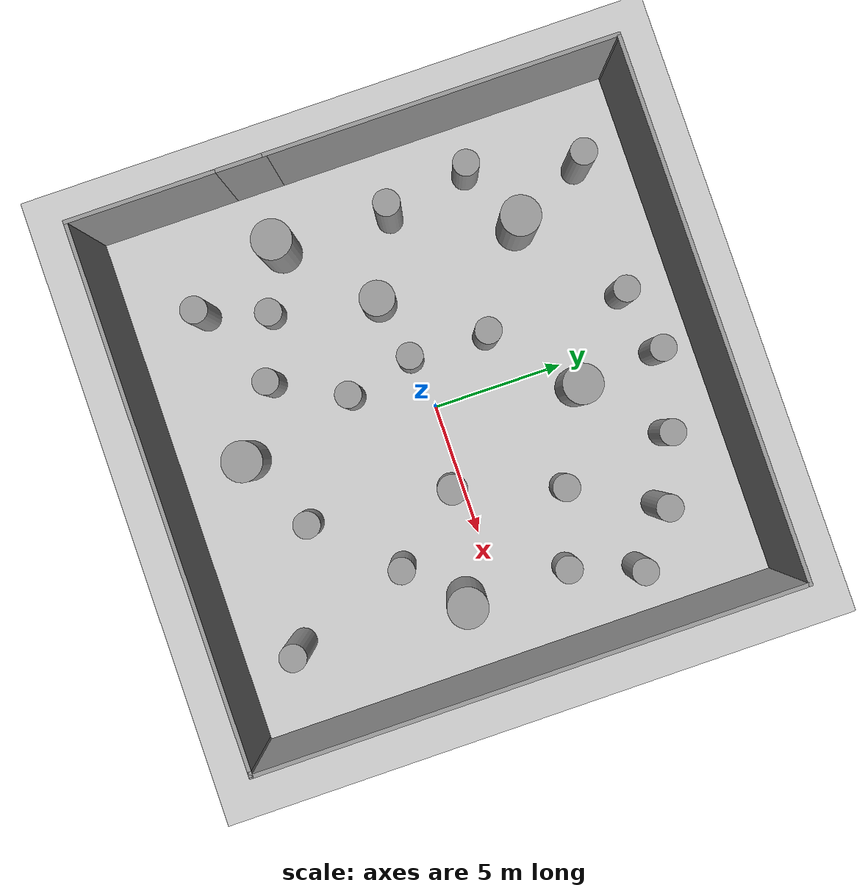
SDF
<sdf version="1.7">
 <world name="default">
  <model name="ground_plane">
   <static>1</static>
   <link name="link">
    <collision name="collision">
     <geometry><plane><normal>0 0 1</normal><size>100 100</size></plane></geometry>
     <surface><friction><ode><mu>100</mu><mu2>50</mu2></ode></friction></surface>
    </collision>
    <visual name="visual">
     <cast_shadows>0</cast_shadows>
     <geometry><plane><normal>0 0 1</normal><size>100 100</size></plane></geometry>
     <material>
      <script><uri>file://media/materials/scripts/gazebo.material</uri><name>Gazebo/Grey</name></script>
     </material>
    </visual>
   </link>
  </model>
  <model name="unit_cylinder">
   <pose>-1.37987 -2.84588 1.39684 0 -0 0.000808</pose>
   <link name="link">
    <inertial>
     <mass>1</mass>
     <inertia><ixx>0.145833</ixx><ixy>0</ixy><ixz>0</ixz><iyy>0.145833</iyy><iyz>0</iyz><izz>0.125</izz></inertia>
    </inertial>
    <collision name="collision">
     <geometry><cylinder><radius>0.5</radius><length>2.7937</length></cylinder></geometry>
    </collision>
    <visual name="visual">
     <geometry><cylinder><radius>0.5</radius><length>2.7937</length></cylinder></geometry>
     <material>
      <script><name>Gazebo/Grey</name><uri>file://media/materials/scripts/gazebo.material</uri></script>
     </material>
    </visual>
   </link>
  </model>
  <model name="Untitled">
   <pose>-0.0303 0.04304 0 0 -0 0</pose>
   <link name="Wall_15">
    <collision name="Wall_15_Collision">
     <geometry><box><size>2 0.15 5</size></box></geometry>
     <pose>0 0 2.5 0 -0 0</pose>
    </collision>
    <visual name="Wall_15_Visual">
     <pose>0 0 2.5 0 -0 0</pose>
     <geometry><box><size>2 0.15 5</size></box></geometry>
     <material>
      <script><uri>file://media/materials/scripts/gazebo.material</uri><name>Gazebo/Grey</name></script>
      <ambient>1 1 1 1</ambient>
     </material>
     <meta><layer>0</layer></meta>
    </visual>
    <pose>-9.975 -3.775 0 0 -0 -1.5708</pose>
   </link>
   <link name="Wall_17">
    <collision name="Wall_17_Collision">
     <geometry><box><size>5.5 0.15 5</size></box></geometry>
     <pose>0 0 2.5 0 -0 0</pose>
    </collision>
    <visual name="Wall_17_Visual">
     <pose>0 0 2.5 0 -0 0</pose>
     <geometry><box><size>5.5 0.15 5</size></box></geometry>
     <material>
      <script><uri>file://media/materials/scripts/gazebo.material</uri><name>Gazebo/Grey</name></script>
      <ambient>1 1 1 1</ambient>
     </material>
     <meta><layer>0</layer></meta>
    </visual>
    <pose>-9.975 -7.375 0 0 -0 -1.5708</pose>
   </link>
   <link name="Wall_18">
    <collision name="Wall_18_Collision">
     <geometry><box><size>20 0.15 5</size></box></geometry>
     <pose>0 0 2.5 0 -0 0</pose>
    </collision>
    <visual name="Wall_18_Visual">
     <pose>0 0 2.5 0 -0 0</pose>
     <geometry><box><size>20 0.15 5</size></box></geometry>
     <material>
      <script><uri>file://media/materials/scripts/gazebo.material</uri><name>Gazebo/Grey</name></script>
      <ambient>1 1 1 1</ambient>
     </material>
     <meta><layer>0</layer></meta>
    </visual>
    <pose>-0.05 -10.05 0 0 -0 0</pose>
   </link>
   <link name="Wall_28">
    <collision name="Wall_28_Collision">
     <geometry><box><size>0.25 0.15 5</size></box></geometry>
     <pose>0 0 2.5 0 -0 0</pose>
    </collision>
    <visual name="Wall_28_Visual">
     <pose>0 0 2.5 0 -0 0</pose>
     <geometry><box><size>0.25 0.15 5</size></box></geometry>
     <material>
      <script><uri>file://media/materials/scripts/gazebo.material</uri><name>Gazebo/Grey</name></script>
      <ambient>1 1 1 1</ambient>
     </material>
     <meta><layer>0</layer></meta>
    </visual>
    <pose>9.925 -10.05 0 0 -0 0</pose>
   </link>
   <link name="Wall_29">
    <collision name="Wall_29_Collision">
     <geometry><box><size>20.25 0.15 5</size></box></geometry>
     <pose>0 0 2.5 0 -0 0</pose>
    </collision>
    <visual name="Wall_29_Visual">
     <pose>0 0 2.5 0 -0 0</pose>
     <geometry><box><size>20.25 0.15 5</size></box></geometry>
     <material>
      <script><uri>file://media/materials/scripts/gazebo.material</uri><name>Gazebo/Grey</name></script>
      <ambient>1 1 1 1</ambient>
     </material>
     <meta><layer>0</layer></meta>
    </visual>
    <pose>9.975 -0 0 0 -0 1.5708</pose>
   </link>
   <link name="Wall_33">
    <collision name="Wall_33_Collision">
     <geometry><box><size>20 0.15 5</size></box></geometry>
     <pose>0 0 2.5 0 -0 0</pose>
    </collision>
    <visual name="Wall_33_Visual">
     <pose>0 0 2.5 0 -0 0</pose>
     <geometry><box><size>20 0.15 5</size></box></geometry>
     <material>
      <script><uri>file://media/materials/scripts/gazebo.material</uri><name>Gazebo/Grey</name></script>
      <ambient>1 1 1 1</ambient>
     </material>
     <meta><layer>0</layer></meta>
    </visual>
    <pose>0.05 10.05 0 0 -0 3.14159</pose>
   </link>
   <link name="Wall_34">
    <collision name="Wall_34_Collision">
     <geometry><box><size>0.25 0.15 5</size></box></geometry>
     <pose>0 0 2.5 0 -0 0</pose>
    </collision>
    <visual name="Wall_34_Visual">
     <pose>0 0 2.5 0 -0 0</pose>
     <geometry><box><size>0.25 0.15 5</size></box></geometry>
     <material>
      <script><uri>file://media/materials/scripts/gazebo.material</uri><name>Gazebo/Grey</name></script>
      <ambient>1 1 1 1</ambient>
     </material>
     <meta><layer>0</layer></meta>
    </visual>
    <pose>-9.925 10.05 0 0 -0 3.14159</pose>
   </link>
   <link name="Wall_35">
    <collision name="Wall_35_Collision">
     <geometry><box><size>13.05 0.15 5</size></box></geometry>
     <pose>0 0 2.5 0 -0 0</pose>
    </collision>
    <visual name="Wall_35_Visual">
     <pose>0 0 2.5 0 -0 0</pose>
     <geometry><box><size>13.05 0.15 5</size></box></geometry>
     <material>
      <script><uri>file://media/materials/scripts/gazebo.material</uri><name>Gazebo/Grey</name></script>
      <ambient>1 1 1 1</ambient>
     </material>
     <meta><layer>0</layer></meta>
    </visual>
    <pose>-9.975 3.6 0 0 -0 -1.5708</pose>
   </link>
   <static>1</static>
  </model>
  <model name="unit_cylinder_clone_1">
   <pose>-1.92183 2.66658 1.49385 0 -0 0.000352</pose>
   <link name="link">
    <inertial>
     <mass>1</mass>
     <inertia><ixx>0.145833</ixx><ixy>0</ixy><ixz>0</ixz><iyy>0.145833</iyy><iyz>0</iyz><izz>0.125</izz></inertia>
    </inertial>
    <collision name="collision">
     <geometry><cylinder><radius>0.5</radius><length>3.02882</length></cylinder></geometry>
    </collision>
    <visual name="visual">
     <geometry><cylinder><radius>0.5</radius><length>3.02882</length></cylinder></geometry>
     <material>
      <script><name>Gazebo/Grey</name><uri>file://media/materials/scripts/gazebo.material</uri></script>
     </material>
    </visual>
   </link>
   <static>1</static>
  </model>
  <model name="unit_cylinder_clone_2">
   <pose>5.24507 -3.07982 1.21524 0 -0 0.000352</pose>
   <static>1</static>
   <link name="link">
    <inertial>
     <mass>1</mass>
     <inertia><ixx>0.145833</ixx><ixy>0</ixy><ixz>0</ixz><iyy>0.145833</iyy><iyz>0</iyz><izz>0.125</izz></inertia>
    </inertial>
    <collision name="collision">
     <geometry><cylinder><radius>0.5</radius><length>2.62089</length></cylinder></geometry>
    </collision>
    <visual name="visual">
     <geometry><cylinder><radius>0.5</radius><length>2.62089</length></cylinder></geometry>
     <material>
      <script><name>Gazebo/Grey</name><uri>file://media/materials/scripts/gazebo.material</uri></script>
     </material>
    </visual>
   </link>
  </model>
  <model name="unit_cylinder_clone_4">
   <pose>3.02569 -0.399537 2.35564 0 -0 0.000352</pose>
   <static>1</static>
   <link name="link">
    <inertial>
     <mass>1</mass>
     <inertia><ixx>0.145833</ixx><ixy>0</ixy><ixz>0</ixz><iyy>0.145833</iyy><iyz>0</iyz><izz>0.125</izz></inertia>
    </inertial>
    <collision name="collision">
     <geometry><cylinder><radius>0.549465</radius><length>2.46158</length></cylinder></geometry>
    </collision>
    <visual name="visual">
     <geometry><cylinder><radius>0.549465</radius><length>2.46158</length></cylinder></geometry>
     <material>
      <script><name>Gazebo/Grey</name><uri>file://media/materials/scripts/gazebo.material</uri></script>
     </material>
    </visual>
   </link>
  </model>
  <model name="unit_cylinder_clone_5">
   <pose>6.7762 -7.57083 1.59329 0 -0 0.000352</pose>
   <static>1</static>
   <link name="link">
    <inertial>
     <mass>1</mass>
     <inertia><ixx>0.145833</ixx><ixy>0</ixy><ixz>0</ixz><iyy>0.145833</iyy><iyz>0</iyz><izz>0.125</izz></inertia>
    </inertial>
    <collision name="collision">
     <geometry><cylinder><radius>0.5</radius><length>4.45278</length></cylinder></geometry>
    </collision>
    <visual name="visual">
     <geometry><cylinder><radius>0.5</radius><length>4.45278</length></cylinder></geometry>
     <material>
      <script><name>Gazebo/Grey</name><uri>file://media/materials/scripts/gazebo.material</uri></script>
     </material>
    </visual>
   </link>
  </model>
  <model name="unit_cylinder_clone_6">
   <pose>6.13905 6.68782 1.62333 0 -0 0.000352</pose>
   <static>1</static>
   <link name="link">
    <inertial>
     <mass>1</mass>
     <inertia><ixx>0.145833</ixx><ixy>0</ixy><ixz>0</ixz><iyy>0.145833</iyy><iyz>0</iyz><izz>0.125</izz></inertia>
    </inertial>
    <collision name="collision">
     <geometry><cylinder><radius>0.5</radius><length>3.4263</length></cylinder></geometry>
    </collision>
    <visual name="visual">
     <geometry><cylinder><radius>0.5</radius><length>3.4263</length></cylinder></geometry>
     <material>
      <script><name>Gazebo/Grey</name><uri>file://media/materials/scripts/gazebo.material</uri></script>
     </material>
    </visual>
   </link>
  </model>
  <model name="unit_cylinder_clone_7">
   <pose>-1.77862 7.95805 1.21363 0 -0 0.000352</pose>
   <static>1</static>
   <link name="link">
    <inertial>
     <mass>1</mass>
     <inertia><ixx>0.145833</ixx><ixy>0</ixy><ixz>0</ixz><iyy>0.145833</iyy><iyz>0</iyz><izz>0.125</izz></inertia>
    </inertial>
    <collision name="collision">
     <geometry><cylinder><radius>0.5</radius><length>2.45036</length></cylinder></geometry>
    </collision>
    <visual name="visual">
     <geometry><cylinder><radius>0.5</radius><length>2.45036</length></cylinder></geometry>
     <material>
      <script><name>Gazebo/Grey</name><uri>file://media/materials/scripts/gazebo.material</uri></script>
     </material>
    </visual>
   </link>
  </model>
  <model name="unit_cylinder_clone_8">
   <pose>-7.33746 0.672283 1.6035 0 -0 0.000352</pose>
   <static>1</static>
   <link name="link">
    <inertial>
     <mass>1</mass>
     <inertia><ixx>0.145833</ixx><ixy>0</ixy><ixz>0</ixz><iyy>0.145833</iyy><iyz>0</iyz><izz>0.125</izz></inertia>
    </inertial>
    <collision name="collision">
     <geometry><cylinder><radius>0.5</radius><length>4.04614</length></cylinder></geometry>
    </collision>
    <visual name="visual">
     <geometry><cylinder><radius>0.5</radius><length>4.04614</length></cylinder></geometry>
     <material>
      <script><name>Gazebo/Grey</name><uri>file://media/materials/scripts/gazebo.material</uri></script>
     </material>
    </visual>
   </link>
  </model>
  <model name="unit_cylinder_clone_10">
   <pose>-5.9302 -6.99962 2.17673 0 -0 0.000352</pose>
   <static>1</static>
   <link name="link">
    <inertial>
     <mass>1</mass>
     <inertia><ixx>0.145833</ixx><ixy>0</ixy><ixz>0</ixz><iyy>0.145833</iyy><iyz>0</iyz><izz>0.125</izz></inertia>
    </inertial>
    <collision name="collision">
     <geometry><cylinder><radius>0.5</radius><length>2.95442</length></cylinder></geometry>
    </collision>
    <visual name="visual">
     <geometry><cylinder><radius>0.5</radius><length>2.95442</length></cylinder></geometry>
     <material>
      <script><name>Gazebo/Grey</name><uri>file://media/materials/scripts/gazebo.material</uri></script>
     </material>
    </visual>
   </link>
  </model>
  <model name="unit_cylinder_clone_12">
   <pose>2.55541 -5.69249 2.55636 0 -0 0.000352</pose>
   <static>1</static>
   <link name="link">
    <inertial>
     <mass>1</mass>
     <inertia><ixx>0.145833</ixx><ixy>0</ixy><ixz>0</ixz><iyy>0.145833</iyy><iyz>0</iyz><izz>0.125</izz></inertia>
    </inertial>
    <collision name="collision">
     <geometry><cylinder><radius>0.5</radius><length>1.52444</length></cylinder></geometry>
    </collision>
    <visual name="visual">
     <geometry><cylinder><radius>0.5</radius><length>1.52444</length></cylinder></geometry>
     <material>
      <script><name>Gazebo/Grey</name><uri>file://media/materials/scripts/gazebo.material</uri></script>
     </material>
    </visual>
   </link>
  </model>
  <model name="unit_cylinder_clone_13">
   <pose>4.26825 3.43985 2.76106 0 -0 0.000352</pose>
   <static>1</static>
   <link name="link">
    <inertial>
     <mass>1</mass>
     <inertia><ixx>0.145833</ixx><ixy>0</ixy><ixz>0</ixz><iyy>0.145833</iyy><iyz>0</iyz><izz>0.125</izz></inertia>
    </inertial>
    <collision name="collision">
     <geometry><cylinder><radius>0.5</radius><length>1.4752</length></cylinder></geometry>
    </collision>
    <visual name="visual">
     <geometry><cylinder><radius>0.5</radius><length>1.4752</length></cylinder></geometry>
     <material>
      <script><name>Gazebo/Grey</name><uri>file://media/materials/scripts/gazebo.material</uri></script>
     </material>
    </visual>
   </link>
  </model>
  <model name="unit_cylinder_clone_4_clone">
   <pose>7.15409 -1.23084 1.44177 0 -0 0.000352</pose>
   <static>1</static>
   <link name="link">
    <inertial>
     <mass>1</mass>
     <inertia><ixx>0.145833</ixx><ixy>0</ixy><ixz>0</ixz><iyy>0.145833</iyy><iyz>0</iyz><izz>0.125</izz></inertia>
    </inertial>
    <collision name="collision">
     <geometry><cylinder><radius>0.75</radius><length>3.93485</length></cylinder></geometry>
    </collision>
    <visual name="visual">
     <geometry><cylinder><radius>0.75</radius><length>3.93485</length></cylinder></geometry>
     <material>
      <script><name>Gazebo/Grey</name><uri>file://media/materials/scripts/gazebo.material</uri></script>
     </material>
    </visual>
   </link>
  </model>
  <model name="unit_cylinder_clone_4_clone_0">
   <pose>-0.312208 -7.11958 2.34371 0 -0 0.000352</pose>
   <static>1</static>
   <link name="link">
    <inertial>
     <mass>1</mass>
     <inertia><ixx>0.145833</ixx><ixy>0</ixy><ixz>0</ixz><iyy>0.145833</iyy><iyz>0</iyz><izz>0.125</izz></inertia>
    </inertial>
    <collision name="collision">
     <geometry><cylinder><radius>0.75</radius><length>2.37678</length></cylinder></geometry>
    </collision>
    <visual name="visual">
     <geometry><cylinder><radius>0.75</radius><length>2.37678</length></cylinder></geometry>
     <material>
      <script><name>Gazebo/Grey</name><uri>file://media/materials/scripts/gazebo.material</uri></script>
     </material>
    </visual>
   </link>
  </model>
  <model name="unit_cylinder_clone_4_clone_1">
   <pose>-4.2282 -0.732599 2.55636 0 -0 0.000352</pose>
   <static>1</static>
   <link name="link">
    <inertial>
     <mass>1</mass>
     <inertia><ixx>0.145833</ixx><ixy>0</ixy><ixz>0</ixz><iyy>0.145833</iyy><iyz>0</iyz><izz>0.125</izz></inertia>
    </inertial>
    <collision name="collision">
     <geometry><cylinder><radius>0.647442</radius><length>2.2229</length></cylinder></geometry>
    </collision>
    <visual name="visual">
     <geometry><cylinder><radius>0.647442</radius><length>2.2229</length></cylinder></geometry>
     <material>
      <script><name>Gazebo/Grey</name><uri>file://media/materials/scripts/gazebo.material</uri></script>
     </material>
    </visual>
   </link>
  </model>
  <model name="unit_cylinder_clone_4_clone_2">
   <pose>-7.4536 -3.61728 1.70021 0 -0 0.000352</pose>
   <static>1</static>
   <link name="link">
    <inertial>
     <mass>1</mass>
     <inertia><ixx>0.145833</ixx><ixy>0</ixy><ixz>0</ixz><iyy>0.145833</iyy><iyz>0</iyz><izz>0.125</izz></inertia>
    </inertial>
    <collision name="collision">
     <geometry><cylinder><radius>0.75</radius><length>3.502</length></cylinder></geometry>
    </collision>
    <visual name="visual">
     <geometry><cylinder><radius>0.75</radius><length>3.502</length></cylinder></geometry>
     <material>
      <script><name>Gazebo/Grey</name><uri>file://media/materials/scripts/gazebo.material</uri></script>
     </material>
    </visual>
   </link>
  </model>
  <model name="unit_cylinder_clone_4_clone_3">
   <pose>0.984908 5.2617 1.36467 0 -0 0.000352</pose>
   <static>1</static>
   <link name="link">
    <inertial>
     <mass>1</mass>
     <inertia><ixx>0.145833</ixx><ixy>0</ixy><ixz>0</ixz><iyy>0.145833</iyy><iyz>0</iyz><izz>0.125</izz></inertia>
    </inertial>
    <collision name="collision">
     <geometry><cylinder><radius>0.75</radius><length>3.21925</length></cylinder></geometry>
    </collision>
    <visual name="visual">
     <geometry><cylinder><radius>0.75</radius><length>3.21925</length></cylinder></geometry>
     <material>
      <script><name>Gazebo/Grey</name><uri>file://media/materials/scripts/gazebo.material</uri></script>
     </material>
    </visual>
   </link>
  </model>
  <model name="unit_cylinder_clone_4_clone_3_clone">
   <pose>-5.40222 5.06274 1.35575 0 -0 0.000352</pose>
   <static>1</static>
   <link name="link">
    <inertial>
     <mass>1</mass>
     <inertia><ixx>0.145833</ixx><ixy>0</ixy><ixz>0</ixz><iyy>0.145833</iyy><iyz>0</iyz><izz>0.125</izz></inertia>
    </inertial>
    <collision name="collision">
     <geometry><cylinder><radius>0.75</radius><length>4.06795</length></cylinder></geometry>
    </collision>
    <visual name="visual">
     <geometry><cylinder><radius>0.75</radius><length>4.06795</length></cylinder></geometry>
     <material>
      <script><name>Gazebo/Grey</name><uri>file://media/materials/scripts/gazebo.material</uri></script>
     </material>
    </visual>
   </link>
  </model>
  <model name="unit_cylinder_clone_7_clone">
   <pose>-6.85441 7.94607 1.08403 0 -0 0.000352</pose>
   <static>1</static>
   <link name="link">
    <inertial>
     <mass>1</mass>
     <inertia><ixx>0.145833</ixx><ixy>0</ixy><ixz>0</ixz><iyy>0.145833</iyy><iyz>0</iyz><izz>0.125</izz></inertia>
    </inertial>
    <collision name="collision">
     <geometry><cylinder><radius>0.5</radius><length>4.5</length></cylinder></geometry>
    </collision>
    <visual name="visual">
     <geometry><cylinder><radius>0.5</radius><length>4.5</length></cylinder></geometry>
     <material>
      <script><name>Gazebo/Grey</name><uri>file://media/materials/scripts/gazebo.material</uri></script>
     </material>
    </visual>
   </link>
  </model>
  <model name="unit_cylinder_clone_13_clone">
   <pose>7.02642 2.58608 2.76106 0 -0 0.000352</pose>
   <static>1</static>
   <link name="link">
    <inertial>
     <mass>1</mass>
     <inertia><ixx>0.145833</ixx><ixy>0</ixy><ixz>0</ixz><iyy>0.145833</iyy><iyz>0</iyz><izz>0.125</izz></inertia>
    </inertial>
    <collision name="collision">
     <geometry><cylinder><radius>0.5</radius><length>1.4752</length></cylinder></geometry>
    </collision>
    <visual name="visual">
     <geometry><cylinder><radius>0.5</radius><length>1.4752</length></cylinder></geometry>
     <material>
      <script><name>Gazebo/Grey</name><uri>file://media/materials/scripts/gazebo.material</uri></script>
     </material>
    </visual>
   </link>
  </model>
  <model name="unit_cylinder_clone_13_clone_0">
   <pose>-5.0278 -4.5426 2.76106 0 -0 0.000352</pose>
   <static>1</static>
   <link name="link">
    <inertial>
     <mass>1</mass>
     <inertia><ixx>0.145833</ixx><ixy>0</ixy><ixz>0</ixz><iyy>0.145833</iyy><iyz>0</iyz><izz>0.125</izz></inertia>
    </inertial>
    <collision name="collision">
     <geometry><cylinder><radius>0.5</radius><length>1.4752</length></cylinder></geometry>
    </collision>
    <visual name="visual">
     <geometry><cylinder><radius>0.5</radius><length>1.4752</length></cylinder></geometry>
     <material>
      <script><name>Gazebo/Grey</name><uri>file://media/materials/scripts/gazebo.material</uri></script>
     </material>
    </visual>
   </link>
  </model>
  <model name="unit_cylinder_clone_7_clone_0">
   <pose>3.68829 7.82929 1.21363 0 -0 0.000352</pose>
   <static>1</static>
   <link name="link">
    <inertial>
     <mass>1</mass>
     <inertia><ixx>0.145833</ixx><ixy>0</ixy><ixz>0</ixz><iyy>0.145833</iyy><iyz>0</iyz><izz>0.125</izz></inertia>
    </inertial>
    <collision name="collision">
     <geometry><cylinder><radius>0.5</radius><length>2.45036</length></cylinder></geometry>
    </collision>
    <visual name="visual">
     <geometry><cylinder><radius>0.5</radius><length>2.45036</length></cylinder></geometry>
     <material>
      <script><name>Gazebo/Grey</name><uri>file://media/materials/scripts/gazebo.material</uri></script>
     </material>
    </visual>
   </link>
  </model>
  <model name="unit_cylinder_clone_2_clone">
   <pose>-2.00379 -0.297577 1.21524 0 -0 0.000352</pose>
   <static>1</static>
   <link name="link">
    <inertial>
     <mass>1</mass>
     <inertia><ixx>0.145833</ixx><ixy>0</ixy><ixz>0</ixz><iyy>0.145833</iyy><iyz>0</iyz><izz>0.125</izz></inertia>
    </inertial>
    <collision name="collision">
     <geometry><cylinder><radius>0.5</radius><length>2.62089</length></cylinder></geometry>
    </collision>
    <visual name="visual">
     <geometry><cylinder><radius>0.5</radius><length>2.62089</length></cylinder></geometry>
     <material>
      <script><name>Gazebo/Grey</name><uri>file://media/materials/scripts/gazebo.material</uri></script>
     </material>
    </visual>
   </link>
  </model>
  <model name="unit_cylinder_clone_2_clone_0">
   <pose>-2.81145 -5.53558 1.21524 0 -0 0.000352</pose>
   <static>1</static>
   <link name="link">
    <inertial>
     <mass>1</mass>
     <inertia><ixx>0.145833</ixx><ixy>0</ixy><ixz>0</ixz><iyy>0.145833</iyy><iyz>0</iyz><izz>0.125</izz></inertia>
    </inertial>
    <collision name="collision">
     <geometry><cylinder><radius>0.5</radius><length>2.62089</length></cylinder></geometry>
    </collision>
    <visual name="visual">
     <geometry><cylinder><radius>0.5</radius><length>2.62089</length></cylinder></geometry>
     <material>
      <script><name>Gazebo/Grey</name><uri>file://media/materials/scripts/gazebo.material</uri></script>
     </material>
    </visual>
   </link>
  </model>
  <model name="unit_cylinder_clone_2_clone_1">
   <pose>8.11669 5.23273 1.21524 0 -0 0.000352</pose>
   <static>1</static>
   <link name="link">
    <inertial>
     <mass>1</mass>
     <inertia><ixx>0.145833</ixx><ixy>0</ixy><ixz>0</ixz><iyy>0.145833</iyy><iyz>0</iyz><izz>0.125</izz></inertia>
    </inertial>
    <collision name="collision">
     <geometry><cylinder><radius>0.5</radius><length>2.62089</length></cylinder></geometry>
    </collision>
    <visual name="visual">
     <geometry><cylinder><radius>0.5</radius><length>2.62089</length></cylinder></geometry>
     <material>
      <script><name>Gazebo/Grey</name><uri>file://media/materials/scripts/gazebo.material</uri></script>
     </material>
    </visual>
   </link>
  </model>
  <model name="unit_cylinder_clone_2_clone_2">
   <pose>-7.99681 3.9107 1.21524 0 -0 0.000352</pose>
   <static>1</static>
   <link name="link">
    <inertial>
     <mass>1</mass>
     <inertia><ixx>0.145833</ixx><ixy>0</ixy><ixz>0</ixz><iyy>0.145833</iyy><iyz>0</iyz><izz>0.125</izz></inertia>
    </inertial>
    <collision name="collision">
     <geometry><cylinder><radius>0.5</radius><length>2.62089</length></cylinder></geometry>
    </collision>
    <visual name="visual">
     <geometry><cylinder><radius>0.5</radius><length>2.62089</length></cylinder></geometry>
     <material>
      <script><name>Gazebo/Grey</name><uri>file://media/materials/scripts/gazebo.material</uri></script>
     </material>
    </visual>
   </link>
  </model>
  <model name="unit_cylinder_clone_2_clone_3">
   <pose>0.683825 8.48793 1.21524 0 -0 0.000352</pose>
   <static>1</static>
   <link name="link">
    <inertial>
     <mass>1</mass>
     <inertia><ixx>0.145833</ixx><ixy>0</ixy><ixz>0</ixz><iyy>0.145833</iyy><iyz>0</iyz><izz>0.125</izz></inertia>
    </inertial>
    <collision name="collision">
     <geometry><cylinder><radius>0.5</radius><length>2.62089</length></cylinder></geometry>
    </collision>
    <visual name="visual">
     <geometry><cylinder><radius>0.5</radius><length>2.62089</length></cylinder></geometry>
     <material>
      <script><name>Gazebo/Grey</name><uri>file://media/materials/scripts/gazebo.material</uri></script>
     </material>
    </visual>
   </link>
  </model>
 </world>
</sdf>
